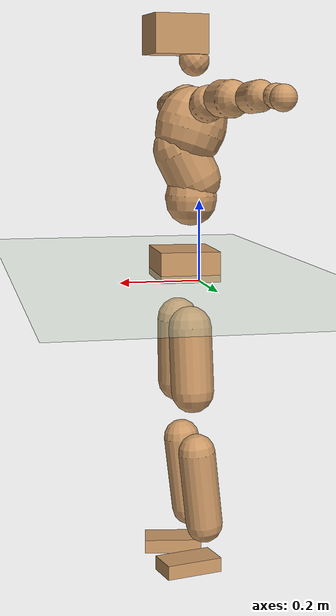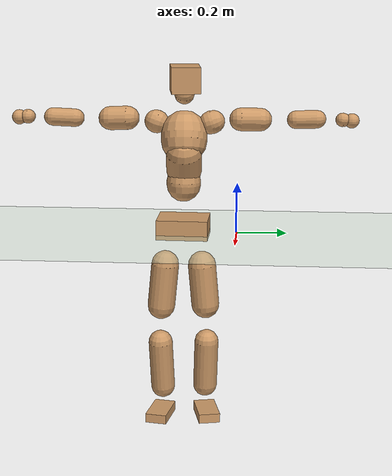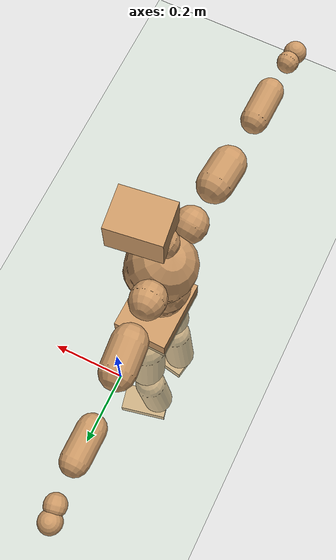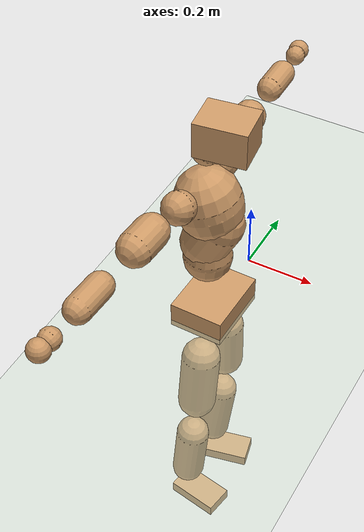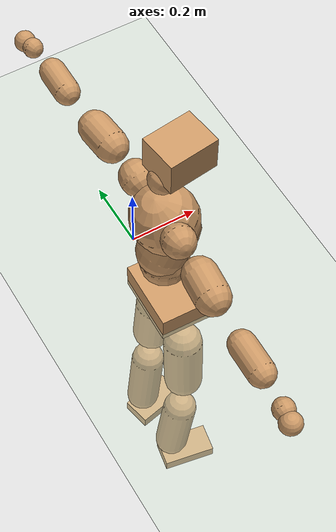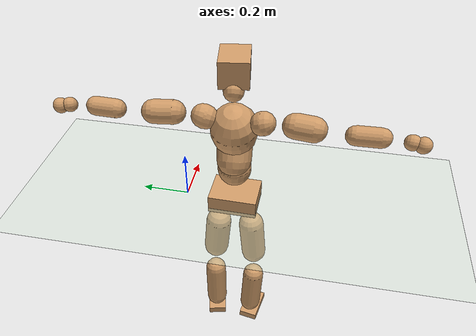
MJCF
<mujoco model="humanoid">
  <compiler coordinate="local" angle="radian"/>
  <default>
    <joint damping="0.0" armature="0.01" stiffness="0.0" limited="true"/>
    <geom conaffinity="1" condim="3" contype="7" margin="0.001" rgba="0.8 0.6 .4 1"/>
  </default>
  <asset>
    <texture type="skybox" builtin="gradient" rgb1=".4 .5 .6" rgb2="0 0 0" width="100" height="100"/>
    <texture builtin="flat" height="1278" mark="cross" markrgb="1 1 1" name="texgeom" random="0.01" rgb1="0.8 0.6 0.4" rgb2="0.8 0.6 0.4" type="cube" width="127"/>
    <texture builtin="checker" height="100" name="texplane" rgb1="0 0 0" rgb2="0.8 0.8 0.8" type="2d" width="100"/>
    <material name="MatPlane" reflectance="0.5" shininess="1" specular="1" texrepeat="60 60" texture="texplane"/>
    <material name="geom" texture="texgeom" texuniform="true"/>
  </asset>
  <worldbody>
    <light cutoff="100" diffuse="1 1 1" dir="-0 0 -1.3" directional="true" exponent="1" pos="0 0 1.3" specular=".1 .1 .1"/>
    <geom conaffinity="1" condim="3" name="floor" pos="0 0 0" rgba="0.8 0.9 0.8 1" size="100 100 .2" type="plane" material="MatPlane"/>
    <body name="Pelvis" pos="0.0002 -0.2145 0.0313">
      <freejoint name="Pelvis"/>
      <geom type="box" contype="1" conaffinity="1" density="5359.37502" pos="-0.0047 0.0001 -0.0122" size="0.0782 0.1026 0.0396" quat="0.9999 0.0000 0.0000 -0.0116" name="Pelvis"/>
      <body name="L_Hip" pos="-0.0037 0.0684 -0.0869">
        <joint name="L_Hip_x" type="hinge" pos="0 0 0" axis="1 0 0" stiffness="1600" damping="160" armature="0.02" range="-180.0000 180.0000"/>
        <joint name="L_Hip_y" type="hinge" pos="0 0 0" axis="0 1 0" stiffness="1600" damping="160" armature="0.02" range="-180.0000 180.0000"/>
        <joint name="L_Hip_z" type="hinge" pos="0 0 0" axis="0 0 1" stiffness="1600" damping="160" armature="0.02" range="-180.0000 180.0000"/>
        <geom type="capsule" contype="1" conaffinity="1" density="2040.816327" size="0.0565" fromto="-0.0018 0.0072 -0.0862 -0.0055 0.0215 -0.2552" name="L_Hip"/>
        <body name="L_Knee" pos="-0.0073 0.0287 -0.3413">
          <joint name="L_Knee_x" type="hinge" pos="0 0 0" axis="1 0 0" stiffness="1600" damping="160" armature="0.02" range="-180.0000 180.0000"/>
          <joint name="L_Knee_y" type="hinge" pos="0 0 0" axis="0 1 0" stiffness="1600" damping="160" armature="0.02" range="-180.0000 180.0000"/>
          <joint name="L_Knee_z" type="hinge" pos="0 0 0" axis="0 0 1" stiffness="1600" damping="160" armature="0.02" range="-180.0000 180.0000"/>
          <geom type="capsule" contype="1" conaffinity="1" density="1234.567901" size="0.0492" fromto="-0.0086 -0.0024 -0.0787 -0.0305 -0.0085 -0.2791" name="L_Knee"/>
          <body name="L_Ankle" pos="-0.0392 -0.0109 -0.3578">
            <joint name="L_Ankle_x" type="hinge" pos="0 0 0" axis="1 0 0" stiffness="1600" damping="160" armature="0.02" range="-180.0000 180.0000"/>
            <joint name="L_Ankle_y" type="hinge" pos="0 0 0" axis="0 1 0" stiffness="1600" damping="160" armature="0.02" range="-180.0000 180.0000"/>
            <joint name="L_Ankle_z" type="hinge" pos="0 0 0" axis="0 0 1" stiffness="1600" damping="160" armature="0.02" range="-180.0000 180.0000"/>
            <geom type="box" contype="1" conaffinity="1" density="1000.000042" pos="0.0543 0.0120 -0.0259" size="0.0769 0.0437 0.019" quat="0.9941 0.0000 0.0000 0.1086" name="L_Ankle"/>
            <body name="L_Toe" pos="0.1087 0.024 -0.0518">
              <joint name="L_Toe_x" type="hinge" pos="0 0 0" axis="1 0 0" stiffness="1000" damping="100" armature="0.02" range="-180.0000 180.0000"/>
              <joint name="L_Toe_y" type="hinge" pos="0 0 0" axis="0 1 0" stiffness="1000" damping="100" armature="0.02" range="-180.0000 180.0000"/>
              <joint name="L_Toe_z" type="hinge" pos="0 0 0" axis="0 0 1" stiffness="1000" damping="100" armature="0.02" range="-180.0000 180.0000"/>
              <geom type="box" contype="1" conaffinity="1" density="8254181.63487" pos="0.0000 0.0000 0.0261" size="0.0009 0.0022 0.001" quat="0.9933 0.0000 0.0000 0.1152" name="L_Toe"/>
            </body>
          </body>
        </body>
      </body>
      <body name="R_Hip" pos="-0.0008 -0.0661 -0.0865">
        <joint name="R_Hip_x" type="hinge" pos="0 0 0" axis="1 0 0" stiffness="1600" damping="160" armature="0.02" range="-180.0000 180.0000"/>
        <joint name="R_Hip_y" type="hinge" pos="0 0 0" axis="0 1 0" stiffness="1600" damping="160" armature="0.02" range="-180.0000 180.0000"/>
        <joint name="R_Hip_z" type="hinge" pos="0 0 0" axis="0 0 1" stiffness="1600" damping="160" armature="0.02" range="-180.0000 180.0000"/>
        <geom type="capsule" contype="1" conaffinity="1" density="2040.816327" size="0.0558" fromto="-0.0021 -0.0081 -0.0854 -0.0064 -0.0251 -0.2639" name="R_Hip"/>
        <body name="R_Knee" pos="-0.0085 -0.0332 -0.3493">
          <joint name="R_Knee_x" type="hinge" pos="0 0 0" axis="1 0 0" stiffness="1600" damping="160" armature="0.02" range="-180.0000 180.0000"/>
          <joint name="R_Knee_y" type="hinge" pos="0 0 0" axis="0 1 0" stiffness="1600" damping="160" armature="0.02" range="-180.0000 180.0000"/>
          <joint name="R_Knee_z" type="hinge" pos="0 0 0" axis="0 0 1" stiffness="1600" damping="160" armature="0.02" range="-180.0000 180.0000"/>
          <geom type="capsule" contype="1" conaffinity="1" density="1234.567901" size="0.0497" fromto="-0.0084 0.0030 -0.0792 -0.0298 0.0105 -0.2814" name="R_Knee"/>
          <body name="R_Ankle" pos="-0.0381 0.0135 -0.3605">
            <joint name="R_Ankle_x" type="hinge" pos="0 0 0" axis="1 0 0" stiffness="1600" damping="160" armature="0.02" range="-180.0000 180.0000"/>
            <joint name="R_Ankle_y" type="hinge" pos="0 0 0" axis="0 1 0" stiffness="1600" damping="160" armature="0.02" range="-180.0000 180.0000"/>
            <joint name="R_Ankle_z" type="hinge" pos="0 0 0" axis="0 0 1" stiffness="1600" damping="160" armature="0.02" range="-180.0000 180.0000"/>
            <geom type="box" contype="1" conaffinity="1" density="1000.000019" pos="0.0559 -0.0096 -0.0219" size="0.0787 0.0437 0.0187" quat="0.9964 0.0000 0.0000 -0.0848" name="R_Ankle"/>
            <body name="R_Toe" pos="0.1119 -0.0192 -0.0437">
              <joint name="R_Toe_x" type="hinge" pos="0 0 0" axis="1 0 0" stiffness="1000" damping="100" armature="0.02" range="-180.0000 180.0000"/>
              <joint name="R_Toe_y" type="hinge" pos="0 0 0" axis="0 1 0" stiffness="1000" damping="100" armature="0.02" range="-180.0000 180.0000"/>
              <joint name="R_Toe_z" type="hinge" pos="0 0 0" axis="0 0 1" stiffness="1000" damping="100" armature="0.02" range="-180.0000 180.0000"/>
              <geom type="box" contype="1" conaffinity="1" density="8219156.493908" pos="0.0000 0.0000 0.0233" size="0.0009 0.0022 0.001" quat="0.9972 0.0000 0.0000 -0.0748" name="R_Toe"/>
            </body>
          </body>
        </body>
      </body>
      <body name="Torso" pos="-0.0236 -0.0017 0.1003">
        <joint name="Torso_x" type="hinge" pos="0 0 0" axis="1 0 0" stiffness="2000" damping="200" armature="0.02" range="-180.0000 180.0000"/>
        <joint name="Torso_y" type="hinge" pos="0 0 0" axis="0 1 0" stiffness="2000" damping="200" armature="0.02" range="-180.0000 180.0000"/>
        <joint name="Torso_z" type="hinge" pos="0 0 0" axis="0 0 1" stiffness="2000" damping="200" armature="0.02" range="-180.0000 180.0000"/>
        <geom type="capsule" contype="1" conaffinity="1" density="2040.816327" size="0.0685" fromto="-0.0010 0.0016 0.0685 -0.0008 0.0013 0.0558" name="Torso"/>
        <body name="Spine" pos="-0.0018 0.0029 0.1243">
          <joint name="Spine_x" type="hinge" pos="0 0 0" axis="1 0 0" stiffness="2000" damping="200" armature="0.02" range="-180.0000 180.0000"/>
          <joint name="Spine_y" type="hinge" pos="0 0 0" axis="0 1 0" stiffness="2000" damping="200" armature="0.02" range="-180.0000 180.0000"/>
          <joint name="Spine_z" type="hinge" pos="0 0 0" axis="0 0 1" stiffness="2000" damping="200" armature="0.02" range="-180.0000 180.0000"/>
          <geom type="capsule" contype="1" conaffinity="1" density="2040.816327" size="0.0706" fromto="0.0319 0.0017 0.0629 -0.0070 -0.0004 -0.0138" name="Spine"/>
          <body name="Chest" pos="0.0249 0.0013 0.0491">
            <joint name="Chest_x" type="hinge" pos="0 0 0" axis="1 0 0" stiffness="2000" damping="200" armature="0.02" range="-180.0000 180.0000"/>
            <joint name="Chest_y" type="hinge" pos="0 0 0" axis="0 1 0" stiffness="2000" damping="200" armature="0.02" range="-180.0000 180.0000"/>
            <joint name="Chest_z" type="hinge" pos="0 0 0" axis="0 0 1" stiffness="2000" damping="200" armature="0.02" range="-180.0000 180.0000"/>
            <geom type="capsule" contype="1" conaffinity="1" density="2040.816327" size="0.0918" fromto="-0.0281 -0.0011 0.0874 -0.0198 -0.0008 0.0615" name="Chest"/>
            <body name="Neck" pos="-0.0566 -0.0026 0.2116">
              <joint name="Neck_x" type="hinge" pos="0 0 0" axis="1 0 0" stiffness="1000" damping="100" armature="0.02" range="-180.0000 180.0000"/>
              <joint name="Neck_y" type="hinge" pos="0 0 0" axis="0 1 0" stiffness="1000" damping="100" armature="0.02" range="-180.0000 180.0000"/>
              <joint name="Neck_z" type="hinge" pos="0 0 0" axis="0 0 1" stiffness="1000" damping="100" armature="0.02" range="-180.0000 180.0000"/>
              <geom type="capsule" contype="1" conaffinity="1" density="1000" size="0.0395" fromto="0.0243 0.0024 0.0312 0.0255 0.0025 0.0327" name="Neck"/>
              <body name="Head" pos="0.0499 0.005 0.0639">
                <joint name="Head_x" type="hinge" pos="0 0 0" axis="1 0 0" stiffness="1000" damping="100" armature="0.02" range="-180.0000 180.0000"/>
                <joint name="Head_y" type="hinge" pos="0 0 0" axis="0 1 0" stiffness="1000" damping="100" armature="0.02" range="-180.0000 180.0000"/>
                <joint name="Head_z" type="hinge" pos="0 0 0" axis="0 0 1" stiffness="1000" damping="100" armature="0.02" range="-180.0000 180.0000"/>
                <geom type="box" contype="1" conaffinity="1" density="2250.000372" pos="0.0259 0.0035 0.0329" size="0.0716 0.0564 0.0505" quat="0.9978 0.0000 0.0000 0.0667" name="Head"/>
              </body>
            </body>
            <body name="L_Thorax" pos="-0.041 0.069 0.1183">
              <joint name="L_Thorax_x" type="hinge" pos="0 0 0" axis="1 0 0" stiffness="1000" damping="100" armature="0.02" range="-180.0000 180.0000"/>
              <joint name="L_Thorax_y" type="hinge" pos="0 0 0" axis="0 1 0" stiffness="1000" damping="100" armature="0.02" range="-180.0000 180.0000"/>
              <joint name="L_Thorax_z" type="hinge" pos="0 0 0" axis="0 0 1" stiffness="1000" damping="100" armature="0.02" range="-180.0000 180.0000"/>
              <geom type="capsule" contype="1" conaffinity="1" density="1000" size="0.0463" fromto="-0.0028 0.0439 0.0147 -0.0021 0.0338 0.0113" name="L_Thorax"/>
              <body name="L_Shoulder" pos="-0.0049 0.0776 0.026">
                <joint name="L_Shoulder_x" type="hinge" pos="0 0 0" axis="1 0 0" stiffness="1000" damping="100" armature="0.02" range="-720.0000 720.0000"/>
                <joint name="L_Shoulder_y" type="hinge" pos="0 0 0" axis="0 1 0" stiffness="1000" damping="100" armature="0.02" range="-720.0000 720.0000"/>
                <joint name="L_Shoulder_z" type="hinge" pos="0 0 0" axis="0 0 1" stiffness="1000" damping="100" armature="0.02" range="-720.0000 720.0000"/>
                <geom type="capsule" contype="1" conaffinity="1" density="1000" size="0.0459" fromto="-0.0072 0.0756 -0.0017 -0.0144 0.1516 -0.0033" name="L_Shoulder"/>
                <body name="L_Elbow" pos="-0.0216 0.2271 -0.005">
                  <joint name="L_Elbow_x" type="hinge" pos="0 0 0" axis="1 0 0" stiffness="1000" damping="100" armature="0.02" range="-720.0000 720.0000"/>
                  <joint name="L_Elbow_y" type="hinge" pos="0 0 0" axis="0 1 0" stiffness="1000" damping="100" armature="0.02" range="-720.0000 720.0000"/>
                  <joint name="L_Elbow_z" type="hinge" pos="0 0 0" axis="0 0 1" stiffness="1000" damping="100" armature="0.02" range="-720.0000 720.0000"/>
                  <geom type="capsule" contype="1" conaffinity="1" density="1000" size="0.0361" fromto="-0.0004 0.0660 0.0021 -0.0008 0.1474 0.0046" name="L_Elbow"/>
                  <body name="L_Wrist" pos="-0.0012 0.2134 0.0067">
                    <joint name="L_Wrist_x" type="hinge" pos="0 0 0" axis="1 0 0" stiffness="600" damping="60" armature="0.02" range="-180.0000 180.0000"/>
                    <joint name="L_Wrist_y" type="hinge" pos="0 0 0" axis="0 1 0" stiffness="600" damping="60" armature="0.02" range="-180.0000 180.0000"/>
                    <joint name="L_Wrist_z" type="hinge" pos="0 0 0" axis="0 0 1" stiffness="600" damping="60" armature="0.02" range="-180.0000 180.0000"/>
                    <geom type="capsule" contype="1" conaffinity="1" density="1000" size="0.0276" fromto="-0.0058 0.0352 -0.0042 -0.0062 0.0371 -0.0044" name="L_Wrist"/>
                    <body name="L_Hand" pos="-0.012 0.0723 -0.0086">
                      <joint name="L_Hand_x" type="hinge" pos="0 0 0" axis="1 0 0" stiffness="600" damping="60" armature="0.02" range="-180.0000 180.0000"/>
                      <joint name="L_Hand_y" type="hinge" pos="0 0 0" axis="0 1 0" stiffness="600" damping="60" armature="0.02" range="-180.0000 180.0000"/>
                      <joint name="L_Hand_z" type="hinge" pos="0 0 0" axis="0 0 1" stiffness="600" damping="60" armature="0.02" range="-180.0000 180.0000"/>
                      <geom type="sphere" contype="1" conaffinity="1" density="1000" size="0.0293" pos="0.0000 0.0000 0.0000" name="L_Hand"/>
                    </body>
                  </body>
                </body>
              </body>
            </body>
            <body name="R_Thorax" pos="-0.0461 -0.072 0.1167">
              <joint name="R_Thorax_x" type="hinge" pos="0 0 0" axis="1 0 0" stiffness="1000" damping="100" armature="0.02" range="-180.0000 180.0000"/>
              <joint name="R_Thorax_y" type="hinge" pos="0 0 0" axis="0 1 0" stiffness="1000" damping="100" armature="0.02" range="-180.0000 180.0000"/>
              <joint name="R_Thorax_z" type="hinge" pos="0 0 0" axis="0 0 1" stiffness="1000" damping="100" armature="0.02" range="-180.0000 180.0000"/>
              <geom type="capsule" contype="1" conaffinity="1" density="1000" size="0.0458" fromto="-0.0043 -0.0429 0.0152 -0.0038 -0.0380 0.0135" name="R_Thorax"/>
              <body name="R_Shoulder" pos="-0.008 -0.0809 0.0287">
                <joint name="R_Shoulder_x" type="hinge" pos="0 0 0" axis="1 0 0" stiffness="1000" damping="100" armature="0.02" range="-720.0000 720.0000"/>
                <joint name="R_Shoulder_y" type="hinge" pos="0 0 0" axis="0 1 0" stiffness="1000" damping="100" armature="0.02" range="-720.0000 720.0000"/>
                <joint name="R_Shoulder_z" type="hinge" pos="0 0 0" axis="0 0 1" stiffness="1000" damping="100" armature="0.02" range="-720.0000 720.0000"/>
                <geom type="capsule" contype="1" conaffinity="1" density="1000" size="0.0474" fromto="-0.0060 -0.0771 -0.0032 -0.0113 -0.1464 -0.0062" name="R_Shoulder"/>
                <body name="R_Elbow" pos="-0.0173 -0.2235 -0.0094">
                  <joint name="R_Elbow_x" type="hinge" pos="0 0 0" axis="1 0 0" stiffness="1000" damping="100" armature="0.02" range="-720.0000 720.0000"/>
                  <joint name="R_Elbow_y" type="hinge" pos="0 0 0" axis="0 1 0" stiffness="1000" damping="100" armature="0.02" range="-720.0000 720.0000"/>
                  <joint name="R_Elbow_z" type="hinge" pos="0 0 0" axis="0 0 1" stiffness="1000" damping="100" armature="0.02" range="-720.0000 720.0000"/>
                  <geom type="capsule" contype="1" conaffinity="1" density="1000" size="0.0363" fromto="-0.0015 -0.0663 0.0022 -0.0037 -0.1567 0.0053" name="R_Elbow"/>
                  <body name="R_Wrist" pos="-0.0052 -0.223 0.0075">
                    <joint name="R_Wrist_x" type="hinge" pos="0 0 0" axis="1 0 0" stiffness="600" damping="60" armature="0.02" range="-180.0000 180.0000"/>
                    <joint name="R_Wrist_y" type="hinge" pos="0 0 0" axis="0 1 0" stiffness="600" damping="60" armature="0.02" range="-180.0000 180.0000"/>
                    <joint name="R_Wrist_z" type="hinge" pos="0 0 0" axis="0 0 1" stiffness="600" damping="60" armature="0.02" range="-180.0000 180.0000"/>
                    <geom type="capsule" contype="1" conaffinity="1" density="1000" size="0.0286" fromto="-0.0046 -0.0358 -0.0032 -0.0048 -0.0378 -0.0033" name="R_Wrist"/>
                    <body name="R_Hand" pos="-0.0094 -0.0736 -0.0065">
                      <joint name="R_Hand_x" type="hinge" pos="0 0 0" axis="1 0 0" stiffness="600" damping="60" armature="0.02" range="-180.0000 180.0000"/>
                      <joint name="R_Hand_y" type="hinge" pos="0 0 0" axis="0 1 0" stiffness="600" damping="60" armature="0.02" range="-180.0000 180.0000"/>
                      <joint name="R_Hand_z" type="hinge" pos="0 0 0" axis="0 0 1" stiffness="600" damping="60" armature="0.02" range="-180.0000 180.0000"/>
                      <geom type="sphere" contype="1" conaffinity="1" density="1000" size="0.0298" pos="0.0000 0.0000 0.0000" name="R_Hand"/>
                    </body>
                  </body>
                </body>
              </body>
            </body>
          </body>
        </body>
      </body>
    </body>
  </worldbody>
  <actuator>
    <motor name="L_Hip_x" joint="L_Hip_x" gear="500"/>
    <motor name="L_Hip_y" joint="L_Hip_y" gear="500"/>
    <motor name="L_Hip_z" joint="L_Hip_z" gear="500"/>
    <motor name="L_Knee_x" joint="L_Knee_x" gear="500"/>
    <motor name="L_Knee_y" joint="L_Knee_y" gear="500"/>
    <motor name="L_Knee_z" joint="L_Knee_z" gear="500"/>
    <motor name="L_Ankle_x" joint="L_Ankle_x" gear="500"/>
    <motor name="L_Ankle_y" joint="L_Ankle_y" gear="500"/>
    <motor name="L_Ankle_z" joint="L_Ankle_z" gear="500"/>
    <motor name="L_Toe_x" joint="L_Toe_x" gear="500"/>
    <motor name="L_Toe_y" joint="L_Toe_y" gear="500"/>
    <motor name="L_Toe_z" joint="L_Toe_z" gear="500"/>
    <motor name="R_Hip_x" joint="R_Hip_x" gear="500"/>
    <motor name="R_Hip_y" joint="R_Hip_y" gear="500"/>
    <motor name="R_Hip_z" joint="R_Hip_z" gear="500"/>
    <motor name="R_Knee_x" joint="R_Knee_x" gear="500"/>
    <motor name="R_Knee_y" joint="R_Knee_y" gear="500"/>
    <motor name="R_Knee_z" joint="R_Knee_z" gear="500"/>
    <motor name="R_Ankle_x" joint="R_Ankle_x" gear="500"/>
    <motor name="R_Ankle_y" joint="R_Ankle_y" gear="500"/>
    <motor name="R_Ankle_z" joint="R_Ankle_z" gear="500"/>
    <motor name="R_Toe_x" joint="R_Toe_x" gear="500"/>
    <motor name="R_Toe_y" joint="R_Toe_y" gear="500"/>
    <motor name="R_Toe_z" joint="R_Toe_z" gear="500"/>
    <motor name="Torso_x" joint="Torso_x" gear="500"/>
    <motor name="Torso_y" joint="Torso_y" gear="500"/>
    <motor name="Torso_z" joint="Torso_z" gear="500"/>
    <motor name="Spine_x" joint="Spine_x" gear="500"/>
    <motor name="Spine_y" joint="Spine_y" gear="500"/>
    <motor name="Spine_z" joint="Spine_z" gear="500"/>
    <motor name="Chest_x" joint="Chest_x" gear="500"/>
    <motor name="Chest_y" joint="Chest_y" gear="500"/>
    <motor name="Chest_z" joint="Chest_z" gear="500"/>
    <motor name="Neck_x" joint="Neck_x" gear="500"/>
    <motor name="Neck_y" joint="Neck_y" gear="500"/>
    <motor name="Neck_z" joint="Neck_z" gear="500"/>
    <motor name="Head_x" joint="Head_x" gear="500"/>
    <motor name="Head_y" joint="Head_y" gear="500"/>
    <motor name="Head_z" joint="Head_z" gear="500"/>
    <motor name="L_Thorax_x" joint="L_Thorax_x" gear="500"/>
    <motor name="L_Thorax_y" joint="L_Thorax_y" gear="500"/>
    <motor name="L_Thorax_z" joint="L_Thorax_z" gear="500"/>
    <motor name="L_Shoulder_x" joint="L_Shoulder_x" gear="500"/>
    <motor name="L_Shoulder_y" joint="L_Shoulder_y" gear="500"/>
    <motor name="L_Shoulder_z" joint="L_Shoulder_z" gear="500"/>
    <motor name="L_Elbow_x" joint="L_Elbow_x" gear="500"/>
    <motor name="L_Elbow_y" joint="L_Elbow_y" gear="500"/>
    <motor name="L_Elbow_z" joint="L_Elbow_z" gear="500"/>
    <motor name="L_Wrist_x" joint="L_Wrist_x" gear="500"/>
    <motor name="L_Wrist_y" joint="L_Wrist_y" gear="500"/>
    <motor name="L_Wrist_z" joint="L_Wrist_z" gear="500"/>
    <motor name="L_Hand_x" joint="L_Hand_x" gear="500"/>
    <motor name="L_Hand_y" joint="L_Hand_y" gear="500"/>
    <motor name="L_Hand_z" joint="L_Hand_z" gear="500"/>
    <motor name="R_Thorax_x" joint="R_Thorax_x" gear="500"/>
    <motor name="R_Thorax_y" joint="R_Thorax_y" gear="500"/>
    <motor name="R_Thorax_z" joint="R_Thorax_z" gear="500"/>
    <motor name="R_Shoulder_x" joint="R_Shoulder_x" gear="500"/>
    <motor name="R_Shoulder_y" joint="R_Shoulder_y" gear="500"/>
    <motor name="R_Shoulder_z" joint="R_Shoulder_z" gear="500"/>
    <motor name="R_Elbow_x" joint="R_Elbow_x" gear="500"/>
    <motor name="R_Elbow_y" joint="R_Elbow_y" gear="500"/>
    <motor name="R_Elbow_z" joint="R_Elbow_z" gear="500"/>
    <motor name="R_Wrist_x" joint="R_Wrist_x" gear="500"/>
    <motor name="R_Wrist_y" joint="R_Wrist_y" gear="500"/>
    <motor name="R_Wrist_z" joint="R_Wrist_z" gear="500"/>
    <motor name="R_Hand_x" joint="R_Hand_x" gear="500"/>
    <motor name="R_Hand_y" joint="R_Hand_y" gear="500"/>
    <motor name="R_Hand_z" joint="R_Hand_z" gear="500"/>
  </actuator>
  <contact>
    <exclude body1="Torso" body2="Chest"/>
    <exclude body1="Head" body2="Chest"/>
    <exclude body1="R_Knee" body2="R_Toe"/>
    <exclude body1="R_Knee" body2="L_Ankle"/>
    <exclude body1="R_Knee" body2="L_Toe"/>
    <exclude body1="L_Knee" body2="L_Toe"/>
    <exclude body1="L_Knee" body2="R_Ankle"/>
    <exclude body1="L_Knee" body2="R_Toe"/>
    <exclude body1="L_Shoulder" body2="Chest"/>
    <exclude body1="R_Shoulder" body2="Chest"/>
  </contact>
  <sensor/>
  <size njmax="700" nconmax="700"/>
</mujoco>
